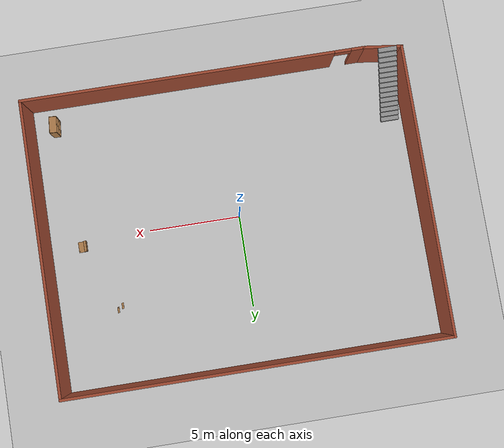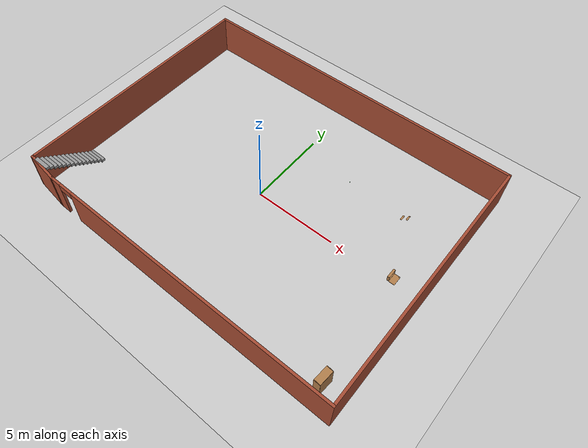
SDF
<sdf version="1.7">
 <world name="default">
  <model name="ground_plane">
   <static>1</static>
   <link name="link">
    <collision name="collision">
     <geometry><plane><normal>0 0 1</normal><size>100 100</size></plane></geometry>
     <surface><friction><ode><mu>100</mu><mu2>50</mu2></ode></friction></surface>
    </collision>
    <visual name="visual">
     <cast_shadows>0</cast_shadows>
     <geometry><plane><normal>0 0 1</normal><size>100 100</size></plane></geometry>
     <material>
      <script><uri>file://media/materials/scripts/gazebo.material</uri><name>Gazebo/Grey</name></script>
     </material>
    </visual>
   </link>
  </model>
  <model name="Untitled">
   <pose>0.302416 0.205559 0 0 -0 0</pose>
   <link name="Stairs_0">
    <visual name="Stairs_0_Visual_0">
     <pose>-9.52086 -4.35961 0.083333 0 -0 0</pose>
     <geometry><box><size>1 0.233333 0.166667</size></box></geometry>
     <material>
      <script><uri>file://media/materials/scripts/gazebo.material</uri><name>Gazebo/Grey</name></script>
      <ambient>1 1 1 1</ambient>
     </material>
     <meta><layer>0</layer></meta>
    </visual>
    <collision name="Stairs_0_Collision_0">
     <geometry><box><size>1 0.233333 0.166667</size></box></geometry>
     <pose>-9.52086 -4.35961 0.083333 0 -0 0</pose>
    </collision>
    <visual name="Stairs_0_Visual_1">
     <pose>-9.52086 -4.59294 0.25 0 -0 0</pose>
     <geometry><box><size>1 0.233333 0.166667</size></box></geometry>
     <material>
      <script><uri>file://media/materials/scripts/gazebo.material</uri><name>Gazebo/Grey</name></script>
      <ambient>1 1 1 1</ambient>
     </material>
     <meta><layer>0</layer></meta>
    </visual>
    <collision name="Stairs_0_Collision_1">
     <geometry><box><size>1 0.233333 0.166667</size></box></geometry>
     <pose>-9.52086 -4.59294 0.25 0 -0 0</pose>
    </collision>
    <visual name="Stairs_0_Visual_2">
     <pose>-9.52086 -4.82628 0.416667 0 -0 0</pose>
     <geometry><box><size>1 0.233333 0.166667</size></box></geometry>
     <material>
      <script><uri>file://media/materials/scripts/gazebo.material</uri><name>Gazebo/Grey</name></script>
      <ambient>1 1 1 1</ambient>
     </material>
     <meta><layer>0</layer></meta>
    </visual>
    <collision name="Stairs_0_Collision_2">
     <geometry><box><size>1 0.233333 0.166667</size></box></geometry>
     <pose>-9.52086 -4.82628 0.416667 0 -0 0</pose>
    </collision>
    <visual name="Stairs_0_Visual_3">
     <pose>-9.52086 -5.05961 0.583333 0 -0 0</pose>
     <geometry><box><size>1 0.233333 0.166667</size></box></geometry>
     <material>
      <script><uri>file://media/materials/scripts/gazebo.material</uri><name>Gazebo/Grey</name></script>
      <ambient>1 1 1 1</ambient>
     </material>
     <meta><layer>0</layer></meta>
    </visual>
    <collision name="Stairs_0_Collision_3">
     <geometry><box><size>1 0.233333 0.166667</size></box></geometry>
     <pose>-9.52086 -5.05961 0.583333 0 -0 0</pose>
    </collision>
    <visual name="Stairs_0_Visual_4">
     <pose>-9.52086 -5.29294 0.75 0 -0 0</pose>
     <geometry><box><size>1 0.233333 0.166667</size></box></geometry>
     <material>
      <script><uri>file://media/materials/scripts/gazebo.material</uri><name>Gazebo/Grey</name></script>
      <ambient>1 1 1 1</ambient>
     </material>
     <meta><layer>0</layer></meta>
    </visual>
    <collision name="Stairs_0_Collision_4">
     <geometry><box><size>1 0.233333 0.166667</size></box></geometry>
     <pose>-9.52086 -5.29294 0.75 0 -0 0</pose>
    </collision>
    <visual name="Stairs_0_Visual_5">
     <pose>-9.52086 -5.52628 0.916667 0 -0 0</pose>
     <geometry><box><size>1 0.233333 0.166667</size></box></geometry>
     <material>
      <script><uri>file://media/materials/scripts/gazebo.material</uri><name>Gazebo/Grey</name></script>
      <ambient>1 1 1 1</ambient>
     </material>
     <meta><layer>0</layer></meta>
    </visual>
    <collision name="Stairs_0_Collision_5">
     <geometry><box><size>1 0.233333 0.166667</size></box></geometry>
     <pose>-9.52086 -5.52628 0.916667 0 -0 0</pose>
    </collision>
    <visual name="Stairs_0_Visual_6">
     <pose>-9.52086 -5.75961 1.08333 0 -0 0</pose>
     <geometry><box><size>1 0.233333 0.166667</size></box></geometry>
     <material>
      <script><uri>file://media/materials/scripts/gazebo.material</uri><name>Gazebo/Grey</name></script>
      <ambient>1 1 1 1</ambient>
     </material>
     <meta><layer>0</layer></meta>
    </visual>
    <collision name="Stairs_0_Collision_6">
     <geometry><box><size>1 0.233333 0.166667</size></box></geometry>
     <pose>-9.52086 -5.75961 1.08333 0 -0 0</pose>
    </collision>
    <visual name="Stairs_0_Visual_7">
     <pose>-9.52086 -5.99294 1.25 0 -0 0</pose>
     <geometry><box><size>1 0.233333 0.166667</size></box></geometry>
     <material>
      <script><uri>file://media/materials/scripts/gazebo.material</uri><name>Gazebo/Grey</name></script>
      <ambient>1 1 1 1</ambient>
     </material>
     <meta><layer>0</layer></meta>
    </visual>
    <collision name="Stairs_0_Collision_7">
     <geometry><box><size>1 0.233333 0.166667</size></box></geometry>
     <pose>-9.52086 -5.99294 1.25 0 -0 0</pose>
    </collision>
    <visual name="Stairs_0_Visual_8">
     <pose>-9.52086 -6.22628 1.41667 0 -0 0</pose>
     <geometry><box><size>1 0.233333 0.166667</size></box></geometry>
     <material>
      <script><uri>file://media/materials/scripts/gazebo.material</uri><name>Gazebo/Grey</name></script>
      <ambient>1 1 1 1</ambient>
     </material>
     <meta><layer>0</layer></meta>
    </visual>
    <collision name="Stairs_0_Collision_8">
     <geometry><box><size>1 0.233333 0.166667</size></box></geometry>
     <pose>-9.52086 -6.22628 1.41667 0 -0 0</pose>
    </collision>
    <visual name="Stairs_0_Visual_9">
     <pose>-9.52086 -6.45961 1.58333 0 -0 0</pose>
     <geometry><box><size>1 0.233333 0.166667</size></box></geometry>
     <material>
      <script><uri>file://media/materials/scripts/gazebo.material</uri><name>Gazebo/Grey</name></script>
      <ambient>1 1 1 1</ambient>
     </material>
     <meta><layer>0</layer></meta>
    </visual>
    <collision name="Stairs_0_Collision_9">
     <geometry><box><size>1 0.233333 0.166667</size></box></geometry>
     <pose>-9.52086 -6.45961 1.58333 0 -0 0</pose>
    </collision>
    <visual name="Stairs_0_Visual_10">
     <pose>-9.52086 -6.69294 1.75 0 -0 0</pose>
     <geometry><box><size>1 0.233333 0.166667</size></box></geometry>
     <material>
      <script><uri>file://media/materials/scripts/gazebo.material</uri><name>Gazebo/Grey</name></script>
      <ambient>1 1 1 1</ambient>
     </material>
     <meta><layer>0</layer></meta>
    </visual>
    <collision name="Stairs_0_Collision_10">
     <geometry><box><size>1 0.233333 0.166667</size></box></geometry>
     <pose>-9.52086 -6.69294 1.75 0 -0 0</pose>
    </collision>
    <visual name="Stairs_0_Visual_11">
     <pose>-9.52086 -6.92628 1.91667 0 -0 0</pose>
     <geometry><box><size>1 0.233333 0.166667</size></box></geometry>
     <material>
      <script><uri>file://media/materials/scripts/gazebo.material</uri><name>Gazebo/Grey</name></script>
      <ambient>1 1 1 1</ambient>
     </material>
     <meta><layer>0</layer></meta>
    </visual>
    <collision name="Stairs_0_Collision_11">
     <geometry><box><size>1 0.233333 0.166667</size></box></geometry>
     <pose>-9.52086 -6.92628 1.91667 0 -0 0</pose>
    </collision>
    <visual name="Stairs_0_Visual_12">
     <pose>-9.52086 -7.15961 2.08333 0 -0 0</pose>
     <geometry><box><size>1 0.233333 0.166667</size></box></geometry>
     <material>
      <script><uri>file://media/materials/scripts/gazebo.material</uri><name>Gazebo/Grey</name></script>
      <ambient>1 1 1 1</ambient>
     </material>
     <meta><layer>0</layer></meta>
    </visual>
    <collision name="Stairs_0_Collision_12">
     <geometry><box><size>1 0.233333 0.166667</size></box></geometry>
     <pose>-9.52086 -7.15961 2.08333 0 -0 0</pose>
    </collision>
    <visual name="Stairs_0_Visual_13">
     <pose>-9.52086 -7.39294 2.25 0 -0 0</pose>
     <geometry><box><size>1 0.233333 0.166667</size></box></geometry>
     <material>
      <script><uri>file://media/materials/scripts/gazebo.material</uri><name>Gazebo/Grey</name></script>
      <ambient>1 1 1 1</ambient>
     </material>
     <meta><layer>0</layer></meta>
    </visual>
    <collision name="Stairs_0_Collision_13">
     <geometry><box><size>1 0.233333 0.166667</size></box></geometry>
     <pose>-9.52086 -7.39294 2.25 0 -0 0</pose>
    </collision>
    <visual name="Stairs_0_Visual_14">
     <pose>-9.52086 -7.62628 2.41667 0 -0 0</pose>
     <geometry><box><size>1 0.233333 0.166667</size></box></geometry>
     <material>
      <script><uri>file://media/materials/scripts/gazebo.material</uri><name>Gazebo/Grey</name></script>
      <ambient>1 1 1 1</ambient>
     </material>
     <meta><layer>0</layer></meta>
    </visual>
    <collision name="Stairs_0_Collision_14">
     <geometry><box><size>1 0.233333 0.166667</size></box></geometry>
     <pose>-9.52086 -7.62628 2.41667 0 -0 0</pose>
    </collision>
   </link>
   <link name="Wall_1">
    <pose>1.00436 -7.92064 0 0 -0 0</pose>
    <visual name="Wall_1_Visual_0">
     <pose>-8.99137 0 1.25 0 -0 0</pose>
     <geometry><box><size>0.767258 0.15 2.5</size></box></geometry>
     <material>
      <script><uri>file://media/materials/scripts/gazebo.material</uri><name>Gazebo/Bricks</name></script>
      <ambient>1 1 1 1</ambient>
     </material>
     <meta><layer>0</layer></meta>
    </visual>
    <collision name="Wall_1_Collision_0">
     <geometry><box><size>0.767258 0.15 2.5</size></box></geometry>
     <pose>-8.99137 0 1.25 0 -0 0</pose>
    </collision>
    <visual name="Wall_1_Visual_1">
     <pose>0.833629 0 1.25 0 -0 0</pose>
     <geometry><box><size>17.0827 0.15 2.5</size></box></geometry>
     <material>
      <script><uri>file://media/materials/scripts/gazebo.material</uri><name>Gazebo/Bricks</name></script>
      <ambient>1 1 1 1</ambient>
     </material>
     <meta><layer>0</layer></meta>
    </visual>
    <collision name="Wall_1_Collision_1">
     <geometry><box><size>17.0827 0.15 2.5</size></box></geometry>
     <pose>0.833629 0 1.25 0 -0 0</pose>
    </collision>
    <visual name="Wall_1_Visual_2">
     <pose>-8.15774 0 2.25 0 -0 0</pose>
     <geometry><box><size>0.9 0.15 0.5</size></box></geometry>
     <material>
      <script><uri>file://media/materials/scripts/gazebo.material</uri><name>Gazebo/Bricks</name></script>
      <ambient>1 1 1 1</ambient>
     </material>
     <meta><layer>0</layer></meta>
    </visual>
    <collision name="Wall_1_Collision_2">
     <geometry><box><size>0.9 0.15 0.5</size></box></geometry>
     <pose>-8.15774 0 2.25 0 -0 0</pose>
    </collision>
   </link>
   <link name="Wall_2">
    <collision name="Wall_2_Collision">
     <geometry><box><size>16 0.15 2.5</size></box></geometry>
     <pose>0 0 1.25 0 -0 0</pose>
    </collision>
    <visual name="Wall_2_Visual">
     <pose>0 0 1.25 0 -0 0</pose>
     <geometry><box><size>16 0.15 2.5</size></box></geometry>
     <material>
      <script><uri>file://media/materials/scripts/gazebo.material</uri><name>Gazebo/Bricks</name></script>
      <ambient>1 1 1 1</ambient>
     </material>
     <meta><layer>0</layer></meta>
    </visual>
    <pose>10.3044 0.004361 0 0 -0 1.5708</pose>
   </link>
   <link name="Wall_3">
    <collision name="Wall_3_Collision">
     <geometry><box><size>20.75 0.15 2.5</size></box></geometry>
     <pose>0 0 1.25 0 -0 0</pose>
    </collision>
    <visual name="Wall_3_Visual">
     <pose>0 0 1.25 0 -0 0</pose>
     <geometry><box><size>20.75 0.15 2.5</size></box></geometry>
     <material>
      <script><uri>file://media/materials/scripts/gazebo.material</uri><name>Gazebo/Bricks</name></script>
      <ambient>1 1 1 1</ambient>
     </material>
     <meta><layer>0</layer></meta>
    </visual>
    <pose>0.004362 7.92936 0 0 -0 3.14159</pose>
   </link>
   <link name="Wall_4">
    <collision name="Wall_4_Collision">
     <geometry><box><size>15.75 0.15 2.5</size></box></geometry>
     <pose>0 0 1.25 0 -0 0</pose>
    </collision>
    <visual name="Wall_4_Visual">
     <pose>0 0 1.25 0 -0 0</pose>
     <geometry><box><size>15.75 0.15 2.5</size></box></geometry>
     <material>
      <script><uri>file://media/materials/scripts/gazebo.material</uri><name>Gazebo/Bricks</name></script>
      <ambient>1 1 1 1</ambient>
     </material>
     <meta><layer>0</layer></meta>
    </visual>
    <pose>-10.2956 0.129361 0 0 -0 -1.5708</pose>
   </link>
   <link name="Wall_5">
    <collision name="Wall_5_Collision">
     <geometry><box><size>2.16556 0.15 2.5</size></box></geometry>
     <pose>0 0 1.25 0 -0 0</pose>
    </collision>
    <visual name="Wall_5_Visual">
     <pose>0 0 1.25 0 -0 0</pose>
     <geometry><box><size>2.16556 0.15 2.5</size></box></geometry>
     <material>
      <script><uri>file://media/materials/scripts/gazebo.material</uri><name>Gazebo/Bricks</name></script>
      <ambient>1 1 1 1</ambient>
     </material>
     <meta><layer>0</layer></meta>
    </visual>
    <pose>-9.29564 -7.79564 0 0 -0 -0.124355</pose>
   </link>
   <static>1</static>
  </model>
  <model name="wooden_board">
   <link name="base">
    <pose>0 0 0.00523 0 -0 0</pose>
    <inertial>
     <mass>0.2765</mass>
     <inertia>
      <ixx>0.0025148</ixx>
      <ixy>0</ixy>
      <ixz>0</ixz>
      <iyy>0.00024037</iyy>
      <iyz>0</iyz>
      <izz>0.00275013</izz>
     </inertia>
    </inertial>
    <collision name="collision">
     <geometry><box><size>0.1016 0.3302 0.01046</size></box></geometry>
     <surface>
      <contact>
       <poissons_ratio>0.347</poissons_ratio>
       <elastic_modulus>8.8e+09</elastic_modulus>
       <ode><kp>100000</kp><kd>100</kd><max_vel>100</max_vel><min_depth>0.001</min_depth></ode>
      </contact>
      <friction>
       <torsional>
        <coefficient>1</coefficient>
        <use_patch_radius>0</use_patch_radius>
        <surface_radius>0.01</surface_radius>
       </torsional>
      </friction>
     </surface>
    </collision>
    <visual name="visual">
     <geometry><box><size>0.1016 0.3302 0.01046</size></box></geometry>
     <material>
      <script><uri>file://media/materials/scripts/gazebo.material</uri><name>Gazebo/Wood</name></script>
     </material>
    </visual>
    <visual name="tee_nut_1">
     <pose>0 -0.116 0 0 -0 0</pose>
     <geometry><cylinder><radius>0.00635</radius><length>0.0105646</length></cylinder></geometry>
     <material>
      <script><uri>file://media/materials/scripts/gazebo.material</uri><name>Gazebo/Grey</name></script>
     </material>
    </visual>
    <visual name="tee_nut_2">
     <pose>0 -0.038 0 0 -0 0</pose>
     <geometry><cylinder><radius>0.00635</radius><length>0.0105646</length></cylinder></geometry>
     <material>
      <script><uri>file://media/materials/scripts/gazebo.material</uri><name>Gazebo/Grey</name></script>
     </material>
    </visual>
    <visual name="tee_nut_3">
     <pose>0 0.038 0 0 -0 0</pose>
     <geometry><cylinder><radius>0.00635</radius><length>0.0105646</length></cylinder></geometry>
     <material>
      <script><uri>file://media/materials/scripts/gazebo.material</uri><name>Gazebo/Grey</name></script>
     </material>
    </visual>
    <visual name="tee_nut_4">
     <pose>0 0.116 0 0 -0 0</pose>
     <geometry><cylinder><radius>0.00635</radius><length>0.0105646</length></cylinder></geometry>
     <material>
      <script><uri>file://media/materials/scripts/gazebo.material</uri><name>Gazebo/Grey</name></script>
     </material>
    </visual>
   </link>
   <pose>7.09779 3.84602 -0.001007 0 -0 0</pose>
  </model>
  <model name="bookshelf">
   <static>1</static>
   <link name="link">
    <inertial><mass>1</mass></inertial>
    <collision name="back">
     <pose>0 0.005 0.6 0 -0 0</pose>
     <geometry><box><size>0.9 0.01 1.2</size></box></geometry>
    </collision>
    <visual name="visual1">
     <pose>0 0.005 0.6 0 -0 0</pose>
     <geometry><box><size>0.9 0.01 1.2</size></box></geometry>
     <material>
      <script><uri>file://media/materials/scripts/gazebo.material</uri><name>Gazebo/Wood</name></script>
     </material>
    </visual>
    <collision name="left_side">
     <pose>0.45 -0.195 0.6 0 -0 0</pose>
     <geometry><box><size>0.02 0.4 1.2</size></box></geometry>
    </collision>
    <visual name="visual2">
     <pose>0.45 -0.195 0.6 0 -0 0</pose>
     <geometry><box><size>0.02 0.4 1.2</size></box></geometry>
     <material>
      <script><uri>file://media/materials/scripts/gazebo.material</uri><name>Gazebo/Wood</name></script>
     </material>
    </visual>
    <collision name="right_side">
     <pose>-0.45 -0.195 0.6 0 -0 0</pose>
     <geometry><box><size>0.02 0.4 1.2</size></box></geometry>
    </collision>
    <visual name="visual3">
     <pose>-0.45 -0.195 0.6 0 -0 0</pose>
     <geometry><box><size>0.02 0.4 1.2</size></box></geometry>
     <material>
      <script><uri>file://media/materials/scripts/gazebo.material</uri><name>Gazebo/Wood</name></script>
     </material>
    </visual>
    <collision name="bottom">
     <pose>0 -0.195 0.03 0 -0 0</pose>
     <geometry><box><size>0.88 0.4 0.06</size></box></geometry>
    </collision>
    <visual name="visual4">
     <pose>0 -0.195 0.03 0 -0 0</pose>
     <geometry><box><size>0.88 0.4 0.06</size></box></geometry>
     <material>
      <script><uri>file://media/materials/scripts/gazebo.material</uri><name>Gazebo/Wood</name></script>
     </material>
    </visual>
    <collision name="top">
     <pose>0 -0.195 1.19 0 -0 0</pose>
     <geometry><box><size>0.88 0.4 0.02</size></box></geometry>
    </collision>
    <visual name="visual5">
     <pose>0 -0.195 1.19 0 -0 0</pose>
     <geometry><box><size>0.88 0.4 0.02</size></box></geometry>
     <material>
      <script><uri>file://media/materials/scripts/gazebo.material</uri><name>Gazebo/Wood</name></script>
     </material>
    </visual>
    <collision name="low_shelf">
     <pose>0 -0.195 0.43 0 -0 0</pose>
     <geometry><box><size>0.88 0.4 0.02</size></box></geometry>
    </collision>
    <visual name="visual6">
     <pose>0 -0.195 0.43 0 -0 0</pose>
     <geometry><box><size>0.88 0.4 0.02</size></box></geometry>
     <material>
      <script><uri>file://media/materials/scripts/gazebo.material</uri><name>Gazebo/Wood</name></script>
     </material>
    </visual>
    <collision name="high_shelf">
     <pose>0 -0.195 0.8 0 -0 0</pose>
     <geometry><box><size>0.88 0.4 0.02</size></box></geometry>
    </collision>
    <visual name="visual7">
     <pose>0 -0.195 0.8 0 -0 0</pose>
     <geometry><box><size>0.88 0.4 0.02</size></box></geometry>
     <material>
      <script><uri>file://media/materials/scripts/gazebo.material</uri><name>Gazebo/Wood</name></script>
     </material>
    </visual>
   </link>
   <pose>9.5222 -6.52823 -0.009255 0.019523 0.001491 -1.64703</pose>
  </model>
  <model name="wooden_case_metal_peg_clone">
   <frame name="wooden_case::__model__" attached_to="wooden_case::base">
    <pose relative_to="__model__">0 0 0 0 -0 0</pose>
   </frame>
   <link name="wooden_case::base">
    <pose relative_to="wooden_case::__model__">0 0 0.024 0 -0 0</pose>
    <inertial>
     <pose>-0.022184 0 0.171592 0 -0 0</pose>
     <mass>3.96264</mass>
     <inertia>
      <ixx>0.213536</ixx>
      <ixy>0</ixy>
      <ixz>0.000779377</ixz>
      <iyy>0.0708943</iyy>
      <iyz>0</iyz>
      <izz>0.154604</izz>
     </inertia>
    </inertial>
    <collision name="collision_back">
     <pose>-0.053975 0 0.1778 0 -0 0</pose>
     <geometry><box><size>0.01905 0.5461 0.3175</size></box></geometry>
     <surface>
      <contact>
       <poissons_ratio>0.347</poissons_ratio>
       <elastic_modulus>8.8e+09</elastic_modulus>
       <ode><kp>100000</kp><kd>100</kd><max_vel>100</max_vel><min_depth>0.001</min_depth></ode>
      </contact>
      <friction>
       <torsional>
        <coefficient>1</coefficient>
        <use_patch_radius>0</use_patch_radius>
        <surface_radius>0.01</surface_radius>
       </torsional>
      </friction>
     </surface>
    </collision>
    <visual name="visual_back">
     <pose>-0.053975 0 0.1778 0 -0 0</pose>
     <geometry><box><size>0.01905 0.5461 0.3175</size></box></geometry>
     <material>
      <script><uri>file://media/materials/scripts/gazebo.material</uri><name>Gazebo/Wood</name></script>
     </material>
    </visual>
    <collision name="collision_bottom">
     <pose>0 0 0.009525 0 -0 0</pose>
     <geometry><box><size>0.127 0.5842 0.01905</size></box></geometry>
     <surface>
      <contact>
       <poissons_ratio>0.347</poissons_ratio>
       <elastic_modulus>8.8e+09</elastic_modulus>
       <ode><kp>100000</kp><kd>100</kd><max_vel>100</max_vel><min_depth>0.001</min_depth></ode>
      </contact>
      <friction>
       <torsional>
        <coefficient>1</coefficient>
        <use_patch_radius>0</use_patch_radius>
        <surface_radius>0.01</surface_radius>
       </torsional>
      </friction>
     </surface>
    </collision>
    <visual name="visual_bottom">
     <pose>0 0 0.009525 0 -0 0</pose>
     <geometry><box><size>0.127 0.5842 0.01905</size></box></geometry>
     <material>
      <script><uri>file://media/materials/scripts/gazebo.material</uri><name>Gazebo/Wood</name></script>
     </material>
    </visual>
    <collision name="collision_top">
     <pose>0 0 0.346075 0 -0 0</pose>
     <geometry><box><size>0.127 0.5842 0.01905</size></box></geometry>
     <surface>
      <contact>
       <poissons_ratio>0.347</poissons_ratio>
       <elastic_modulus>8.8e+09</elastic_modulus>
       <ode><kp>100000</kp><kd>100</kd><max_vel>100</max_vel><min_depth>0.001</min_depth></ode>
      </contact>
      <friction>
       <torsional>
        <coefficient>1</coefficient>
        <use_patch_radius>0</use_patch_radius>
        <surface_radius>0.01</surface_radius>
       </torsional>
      </friction>
     </surface>
    </collision>
    <visual name="visual_top">
     <pose>0 0 0.346075 0 -0 0</pose>
     <geometry><box><size>0.127 0.5842 0.01905</size></box></geometry>
     <material>
      <script><uri>file://media/materials/scripts/gazebo.material</uri><name>Gazebo/Wood</name></script>
     </material>
    </visual>
    <collision name="collision_left">
     <pose>0 -0.282575 0.1778 0 -0 0</pose>
     <geometry><box><size>0.127 0.01905 0.3175</size></box></geometry>
     <surface>
      <contact>
       <poissons_ratio>0.347</poissons_ratio>
       <elastic_modulus>8.8e+09</elastic_modulus>
       <ode><kp>100000</kp><kd>100</kd><max_vel>100</max_vel><min_depth>0.001</min_depth></ode>
      </contact>
      <friction>
       <torsional>
        <coefficient>1</coefficient>
        <use_patch_radius>0</use_patch_radius>
        <surface_radius>0.01</surface_radius>
       </torsional>
      </friction>
     </surface>
    </collision>
    <visual name="visual_left">
     <pose>0 -0.282575 0.1778 0 -0 0</pose>
     <geometry><box><size>0.127 0.01905 0.3175</size></box></geometry>
     <material>
      <script><uri>file://media/materials/scripts/gazebo.material</uri><name>Gazebo/Wood</name></script>
     </material>
    </visual>
    <collision name="collision_right">
     <pose>0 0.282575 0.1778 0 -0 0</pose>
     <geometry><box><size>0.127 0.01905 0.3175</size></box></geometry>
     <surface>
      <contact>
       <poissons_ratio>0.347</poissons_ratio>
       <elastic_modulus>8.8e+09</elastic_modulus>
       <ode><kp>100000</kp><kd>100</kd><max_vel>100</max_vel><min_depth>0.001</min_depth></ode>
      </contact>
      <friction>
       <torsional>
        <coefficient>1</coefficient>
        <use_patch_radius>0</use_patch_radius>
        <surface_radius>0.01</surface_radius>
       </torsional>
      </friction>
     </surface>
    </collision>
    <visual name="visual_right">
     <pose>0 0.282575 0.1778 0 -0 0</pose>
     <geometry><box><size>0.127 0.01905 0.3175</size></box></geometry>
     <material>
      <script><uri>file://media/materials/scripts/gazebo.material</uri><name>Gazebo/Wood</name></script>
     </material>
    </visual>
    <collision name="collision_block_left">
     <pose>0.0095 -0.2151 -0.012 0 -0 0</pose>
     <geometry><box><size>0.108 0.05 0.024</size></box></geometry>
     <surface>
      <contact>
       <poissons_ratio>0.347</poissons_ratio>
       <elastic_modulus>8.8e+09</elastic_modulus>
       <ode><kp>100000</kp><kd>100</kd><max_vel>100</max_vel><min_depth>0.001</min_depth></ode>
      </contact>
      <friction>
       <torsional>
        <coefficient>1</coefficient>
        <use_patch_radius>0</use_patch_radius>
        <surface_radius>0.01</surface_radius>
       </torsional>
      </friction>
     </surface>
    </collision>
    <visual name="visual_block_left">
     <pose>0.0095 -0.2151 -0.012 0 -0 0</pose>
     <geometry><box><size>0.108 0.05 0.024</size></box></geometry>
     <material>
      <script><uri>file://media/materials/scripts/gazebo.material</uri><name>Gazebo/Wood</name></script>
     </material>
    </visual>
    <collision name="collision_block_right">
     <pose>0.0095 0.2151 -0.012 0 -0 0</pose>
     <geometry><box><size>0.108 0.05 0.024</size></box></geometry>
     <surface>
      <contact>
       <poissons_ratio>0.347</poissons_ratio>
       <elastic_modulus>8.8e+09</elastic_modulus>
       <ode><kp>100000</kp><kd>100</kd><max_vel>100</max_vel><min_depth>0.001</min_depth></ode>
      </contact>
      <friction>
       <torsional>
        <coefficient>1</coefficient>
        <use_patch_radius>0</use_patch_radius>
        <surface_radius>0.01</surface_radius>
       </torsional>
      </friction>
     </surface>
    </collision>
    <visual name="visual_block_right">
     <pose>0.0095 0.2151 -0.012 0 -0 0</pose>
     <geometry><box><size>0.108 0.05 0.024</size></box></geometry>
     <material>
      <script><uri>file://media/materials/scripts/gazebo.material</uri><name>Gazebo/Wood</name></script>
     </material>
    </visual>
   </link>
   <link name="wooden_case::lid">
    <pose relative_to="wooden_case::__model__">0.243775 0 0.009525 0 -0 0</pose>
    <inertial>
     <mass>1.97874</mass>
     <inertia>
      <ixx>0.0563367</ixx>
      <ixy>0</ixy>
      <ixz>0</ixz>
      <iyy>0.020911</iyy>
      <iyz>0</iyz>
      <izz>0.0771281</izz>
     </inertia>
    </inertial>
    <collision name="collision">
     <geometry><box><size>0.3556 0.5842 0.01905</size></box></geometry>
     <surface>
      <contact>
       <poissons_ratio>0.347</poissons_ratio>
       <elastic_modulus>8.8e+09</elastic_modulus>
       <ode><kp>100000</kp><kd>100</kd><max_vel>100</max_vel><min_depth>0.001</min_depth></ode>
      </contact>
      <friction>
       <torsional>
        <coefficient>1</coefficient>
        <use_patch_radius>0</use_patch_radius>
        <surface_radius>0.01</surface_radius>
       </torsional>
      </friction>
     </surface>
    </collision>
    <visual name="visual">
     <geometry><box><size>0.3556 0.5842 0.01905</size></box></geometry>
     <material>
      <script><uri>file://media/materials/scripts/gazebo.material</uri><name>Gazebo/Wood</name></script>
     </material>
    </visual>
    <visual name="tee_nut_1">
     <pose>0.122 -0.216 0 0 -0 0</pose>
     <geometry><cylinder><radius>0.00635</radius><length>0.0192405</length></cylinder></geometry>
     <material>
      <script><uri>file://media/materials/scripts/gazebo.material</uri><name>Gazebo/Grey</name></script>
     </material>
    </visual>
    <visual name="tee_nut_2">
     <pose>0.122 -0.088 0 0 -0 0</pose>
     <geometry><cylinder><radius>0.00635</radius><length>0.0192405</length></cylinder></geometry>
     <material>
      <script><uri>file://media/materials/scripts/gazebo.material</uri><name>Gazebo/Grey</name></script>
     </material>
    </visual>
    <visual name="tee_nut_3">
     <pose>0.122 0.088 0 0 -0 0</pose>
     <geometry><cylinder><radius>0.00635</radius><length>0.0192405</length></cylinder></geometry>
     <material>
      <script><uri>file://media/materials/scripts/gazebo.material</uri><name>Gazebo/Grey</name></script>
     </material>
    </visual>
    <visual name="tee_nut_4">
     <pose>0.122 0.216 0 0 -0 0</pose>
     <geometry><cylinder><radius>0.00635</radius><length>0.0192405</length></cylinder></geometry>
     <material>
      <script><uri>file://media/materials/scripts/gazebo.material</uri><name>Gazebo/Grey</name></script>
     </material>
    </visual>
   </link>
   <joint name="wooden_case::lid_hinge" type="revolute">
    <pose>-0.1778 0 0.01905 0 -0 0</pose>
    <parent>wooden_case::base</parent>
    <child>wooden_case::lid</child>
    <axis>
     <xyz>0 1 0</xyz>
     <limit><upper>0.523599</upper><lower>-1.5708</lower></limit>
     <dynamics><spring_reference>0</spring_reference><spring_stiffness>0</spring_stiffness></dynamics>
    </axis>
   </joint>
   <frame name="peg::__model__" attached_to="peg::link">
    <pose relative_to="__model__">0.365774 0.216 0.01905 0 -0 0</pose>
   </frame>
   <link name="peg::link">
    <pose relative_to="peg::__model__">0 0 0.031 0 -0 0</pose>
    <inertial>
     <mass>0.0121</mass>
     <inertia>
      <ixx>3.90898e-06</ixx>
      <ixy>0</ixy>
      <ixz>0</ixz>
      <iyy>3.90898e-06</iyy>
      <iyz>0</iyz>
      <izz>6.58845e-08</izz>
     </inertia>
    </inertial>
    <collision name="collision">
     <geometry><cylinder><radius>0.0033</radius><length>0.062</length></cylinder></geometry>
     <surface>
      <contact>
       <poissons_ratio>0.305</poissons_ratio>
       <elastic_modulus>2e+11</elastic_modulus>
       <ode><kp>100000</kp><kd>100</kd><max_vel>100</max_vel><min_depth>0.001</min_depth></ode>
      </contact>
      <friction>
       <torsional>
        <coefficient>1</coefficient>
        <use_patch_radius>0</use_patch_radius>
        <surface_radius>0.01</surface_radius>
       </torsional>
      </friction>
     </surface>
    </collision>
    <visual name="visual">
     <geometry><cylinder><radius>0.0033</radius><length>0.062</length></cylinder></geometry>
     <material>
      <script><uri>file://media/materials/scripts/gazebo.material</uri><name>Gazebo/Grey</name></script>
     </material>
    </visual>
   </link>
   <joint name="case_peg" type="revolute">
    <child>peg::link</child>
    <parent>wooden_case::lid</parent>
    <axis>
     <xyz>0 0 1</xyz>
     <limit><upper>0</upper><lower>0</lower></limit>
     <dynamics><spring_reference>0</spring_reference><spring_stiffness>0</spring_stiffness></dynamics>
    </axis>
   </joint>
   <pose>8.62914 0.291648 -0.001057 0 -0.000428 0</pose>
  </model>
  <model name="wooden_board_0">
   <link name="base">
    <pose>0 0 0.00523 0 -0 0</pose>
    <inertial>
     <mass>0.2765</mass>
     <inertia>
      <ixx>0.0025148</ixx>
      <ixy>0</ixy>
      <ixz>0</ixz>
      <iyy>0.00024037</iyy>
      <iyz>0</iyz>
      <izz>0.00275013</izz>
     </inertia>
    </inertial>
    <collision name="collision">
     <geometry><box><size>0.1016 0.3302 0.01046</size></box></geometry>
     <surface>
      <contact>
       <poissons_ratio>0.347</poissons_ratio>
       <elastic_modulus>8.8e+09</elastic_modulus>
       <ode><kp>100000</kp><kd>100</kd><max_vel>100</max_vel><min_depth>0.001</min_depth></ode>
      </contact>
      <friction>
       <torsional>
        <coefficient>1</coefficient>
        <use_patch_radius>0</use_patch_radius>
        <surface_radius>0.01</surface_radius>
       </torsional>
      </friction>
     </surface>
    </collision>
    <visual name="visual">
     <geometry><box><size>0.1016 0.3302 0.01046</size></box></geometry>
     <material>
      <script><uri>file://media/materials/scripts/gazebo.material</uri><name>Gazebo/Wood</name></script>
     </material>
    </visual>
    <visual name="tee_nut_1">
     <pose>0 -0.116 0 0 -0 0</pose>
     <geometry><cylinder><radius>0.00635</radius><length>0.0105646</length></cylinder></geometry>
     <material>
      <script><uri>file://media/materials/scripts/gazebo.material</uri><name>Gazebo/Grey</name></script>
     </material>
    </visual>
    <visual name="tee_nut_2">
     <pose>0 -0.038 0 0 -0 0</pose>
     <geometry><cylinder><radius>0.00635</radius><length>0.0105646</length></cylinder></geometry>
     <material>
      <script><uri>file://media/materials/scripts/gazebo.material</uri><name>Gazebo/Grey</name></script>
     </material>
    </visual>
    <visual name="tee_nut_3">
     <pose>0 0.038 0 0 -0 0</pose>
     <geometry><cylinder><radius>0.00635</radius><length>0.0105646</length></cylinder></geometry>
     <material>
      <script><uri>file://media/materials/scripts/gazebo.material</uri><name>Gazebo/Grey</name></script>
     </material>
    </visual>
    <visual name="tee_nut_4">
     <pose>0 0.116 0 0 -0 0</pose>
     <geometry><cylinder><radius>0.00635</radius><length>0.0105646</length></cylinder></geometry>
     <material>
      <script><uri>file://media/materials/scripts/gazebo.material</uri><name>Gazebo/Grey</name></script>
     </material>
    </visual>
   </link>
   <pose>7.35943 4.02933 -0.001007 0 -0 0</pose>
  </model>
  <model name="wood_cube_green">
   <link name="link">
    <pose>-0 0 0.0125 0 -0 0</pose>
    <inertial>
     <mass>0.0073</mass>
     <inertia><ixx>7.6e-07</ixx><ixy>0</ixy><ixz>0</ixz><iyy>7.6e-07</iyy><iyz>0</iyz><izz>7.6e-07</izz></inertia>
    </inertial>
    <visual name="visual">
     <geometry><box><size>0.025 0.025 0.025</size></box></geometry>
     <material>
      <script><uri>file://media/materials/scripts/gazebo.material</uri><name>Gazebo/Green</name></script>
      <shader type="pixel"><normal_map>__default__</normal_map></shader>
      <ambient>0 1 0 1</ambient>
      <diffuse>0 1 0 1</diffuse>
      <specular>0.1 0.1 0.1 1</specular>
      <emissive>0 0 0 1</emissive>
     </material>
    </visual>
    <collision name="collision">
     <geometry><box><size>0.025 0.025 0.025</size></box></geometry>
     <surface>
      <friction>
       <ode><mu>1</mu><mu2>1</mu2><fdir1>0 0 0</fdir1><slip1>0</slip1><slip2>0</slip2></ode>
       <torsional>
        <coefficient>1</coefficient>
        <patch_radius>0</patch_radius>
        <surface_radius>0.01</surface_radius>
        <use_patch_radius>0</use_patch_radius>
        <ode><slip>0</slip></ode>
       </torsional>
      </friction>
      <bounce><restitution_coefficient>0</restitution_coefficient><threshold>1e+06</threshold></bounce>
      <contact>
       <collide_without_contact>0</collide_without_contact>
       <collide_without_contact_bitmask>1</collide_without_contact_bitmask>
       <collide_bitmask>1</collide_bitmask>
       <ode>
        <soft_cfm>0</soft_cfm>
        <soft_erp>0.2</soft_erp>
        <kp>100000</kp>
        <kd>100</kd>
        <max_vel>100</max_vel>
        <min_depth>0.001</min_depth>
       </ode>
       <bullet>
        <split_impulse>1</split_impulse>
        <split_impulse_penetration_threshold>-0.01</split_impulse_penetration_threshold>
        <soft_cfm>0</soft_cfm>
        <soft_erp>0.2</soft_erp>
        <kp>100000</kp>
        <kd>100</kd>
       </bullet>
      </contact>
     </surface>
    </collision>
   </link>
   <static>0</static>
   <pose>3.41182 4.00489 -0.000505 6.4e-05 -6.4e-05 0</pose>
  </model>
 </world>
</sdf>
